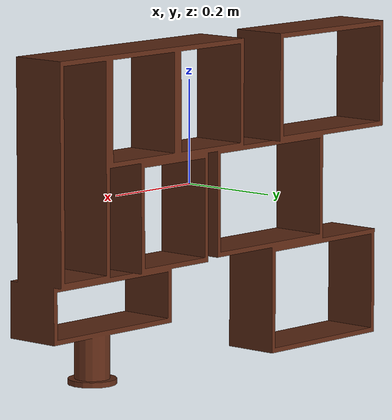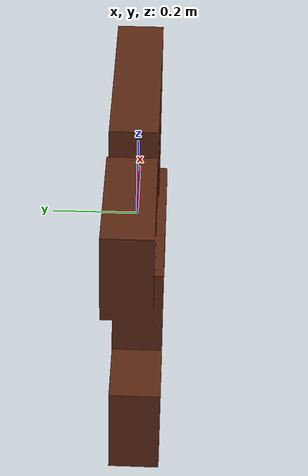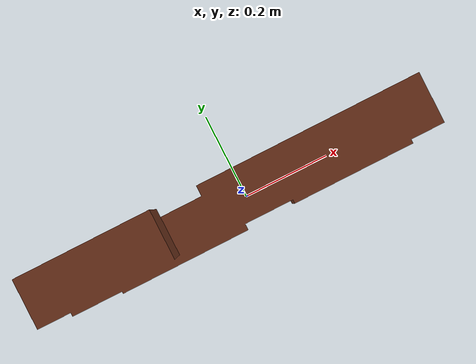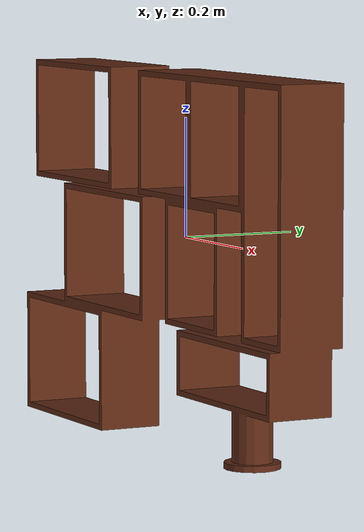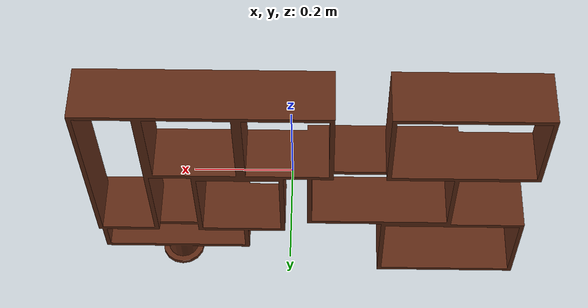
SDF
<?xml version="1.0" ?>
<sdf version="1.5">
  <model name="bookshelf">
    <static>true</static>
    <link name="bookshelf_link">
        <pose>0 0 0 0 0 0</pose>
        <collision name="bs_collision">
         <geometry>
	          <box>
                <size>0.91 0.11 0.63</size>
            </box>
        </geometry>
        <surface>
          <friction>
            <ode>
              <mu>100</mu>
              <mu2>50</mu2>
            </ode>
          </friction>
        </surface>
      </collision>

      <visual name="bs_mesh">
        <cast_shadows>true</cast_shadows>
        <geometry>
            <mesh>
                <uri>model://lc_bookshelf/meshes/bookshelf.dae</uri>
            </mesh>
        </geometry>
	    <material>
          <script>
            <uri>model://lc_bookshelf/materials/scripts</uri>
            <uri>model://lc_bookshelf/materials/textures</uri>
            <name>bookshelfMat/Diffuse</name>
          </script>
        </material>
      </visual>
    </link>
  </model>
</sdf>
